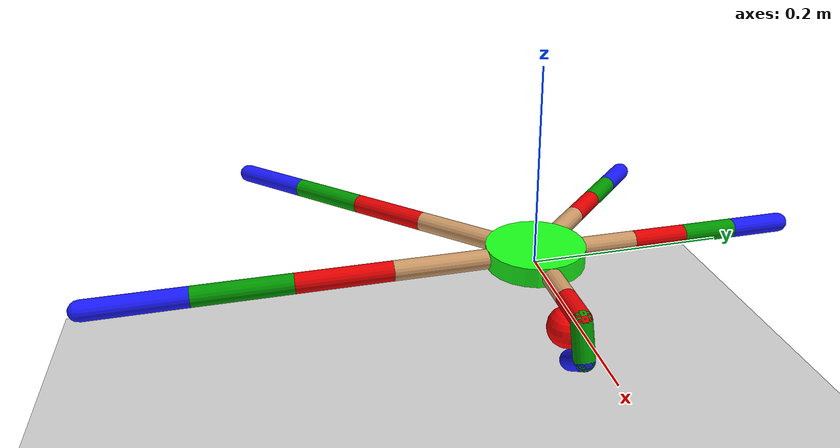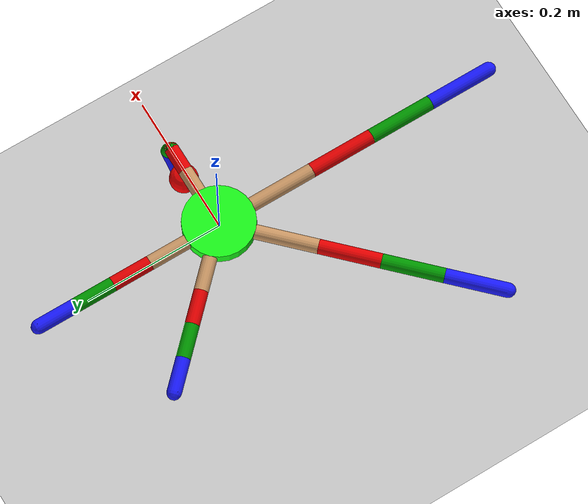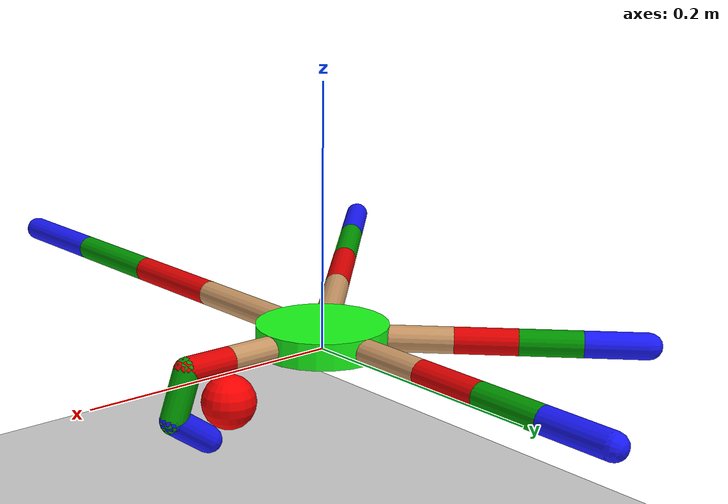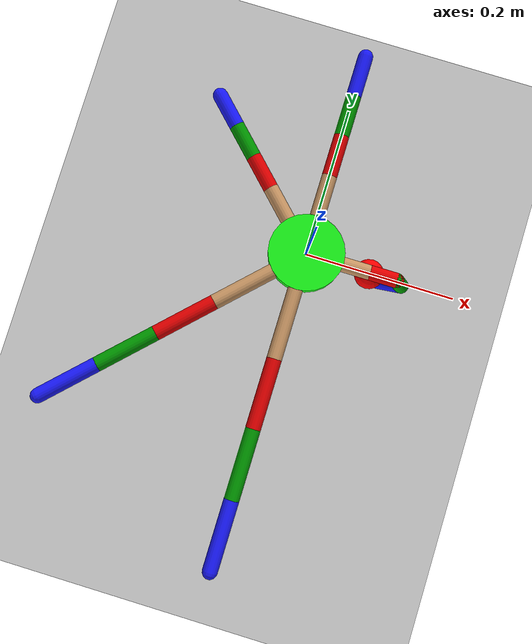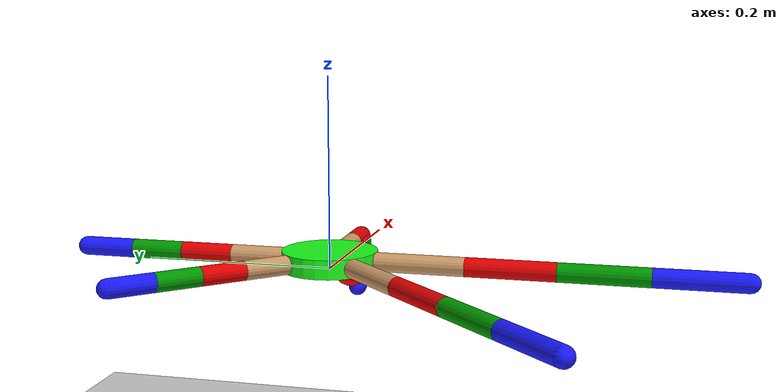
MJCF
<mujoco model="hand">
            <compiler angle="radian" assetdir="../descriptions/" inertiafromgeom="true" />
            <size njmax="500" nconmax="100" />

            <visual>
              <global offwidth="1920" offheight="1080" />
            </visual>

            <option>
                <flag gravity="enable" />
            </option>

            <default>
                <joint limited="true" damping="1" armature="0" />
                <geom contype="1" conaffinity="1" condim="3" rgba="0.8 0.6 .4 1" margin="0.001" solref=".02 1" solimp=".8 .8 .01" material="geom" />
            </default>

         <default>
            <joint damping="0.01" frictionloss="0" />
            <default class="visual">
              <geom contype="0" conaffinity="0" />
            </default>
            <default class="collision">
              <geom contype="1" conaffinity="1" friction="1 0.5 0.1" />
            </default>
              <default class="obj">
              <geom condim="3" priority="1" friction="1 1 1" solref=".02 0.8" solimp=".8 .8 .01" />
            </default>

              <default class="fingers">
              <geom friction="1 0.5 0.2" />
            </default>
            <site rgba="1 0 0 0" size="0.005 0.005 0.005" />
          </default>

                <asset>
                    <texture name="texgeom" type="cube" builtin="flat" mark="cross" width="127" height="1278" rgb1="0.8 0.6 0.4" rgb2="0.8 0.6 0.4" markrgb="1 1 1" random="0.01" />
                    <texture name="texplane" type="2d" builtin="checker" rgb1=".2 .3 .4" rgb2=".1 0.15 0.2" width="512" height="512" />

                    <material name="MatPlane" reflectance="0.5" texture="texplane" texrepeat="1 1" texuniform="true" />
                    <material name="geom" texture="texgeom" texuniform="true" />
                     <texture builtin="flat" name="allegro_mount_tex" height="32" width="32" rgb1="0.2 0.2 0.2" type="cube" />
                     <texture builtin="flat" name="hand_tex" height="32" width="32" rgb1="0.2 0.2 0.2 " type="cube" />
                     <texture builtin="flat" name="tip_tex" height="32" width="32" rgb1="0.9 0.9 0.9" type="cube" />

                    <material name="allegro_mount_mat" shininess="0.03" specular="0.25" />
                    <material name="hand_mat" shininess="0.03" specular="0.25" />
                    <material name="tip_mat" shininess="0.03" specular="0.25" />
                </asset>

            <worldbody>
                <light pos="0 0 1000" castshadow="false" />
                 <light directional="false" diffuse=".8 .8 .8" specular="0.3 0.3 0.3" pos="0 0 4.0" dir="0 -.15 -1" />
                 <camera name="closeup" pos="0 -.1 .07" xyaxes="1 0 0 0 1 2" />
                <geom name="floor" class="collision" type="plane" size="10 10 1" rgba=".8 .8 .8 1" pos="0 0 -0.25" material="MatPlane" />
                    <body name="hand" euler="0 0 0" pos="0 0 0.01">
            <freejoint />
            <geom class="fingers" name="hand_base" pos="0 0 0" quat="1 0 0 0" type="cylinder" size="0.05 0.01" rgba="0.1 1 .1 1" />

                        <body name="finger_0" pos="0 0 0">
                          <body name="aux_00" pos="0.05 0.0 0" quat="0.9999996008191248 0.0 0.0 0.0008935108231599496">
                            <geom class="fingers" fromto="0 0 0 0.036 0 0" name="g_00" size="0.01" type="capsule" />
                        <body name="aux_01" pos="0.036 0 0" quat="0.9999993027170079 -0.0 -0.0011809172274269333 -0.0">
                                        <geom class="fingers" fromto="0 0 0 0.036 0 0" name="g_01" size="0.01" type="capsule" rgba="0.9 0 0 1" />
                                    <body name="aux_02" pos="0.036 0 0" quat="0.8185134691910833 0.0 0.5744873373302296 0.0">
                                        <geom class="fingers" fromto="0 0 0 0.036 0 0" name="g_02" size="0.01" type="capsule" rgba="0.0 0.6 0 1" />
                                    <body name="aux_03" pos="0.036 0 0" quat="0.7966085828492817 0.0 0.6044954637802159 0.0">
                                        <geom class="fingers" fromto="0 0 0 0.036 0 0" name="g_03" size="0.01" type="capsule" rgba="0.1 0.1 1 1" />
                                            <site name="finger_site_0" pos="0.036 0 0" />
                    </body>
                    </body>
                    </body>
                    </body>
                    </body>

                        <body name="finger_2" pos="0 0 0">
                          <body name="aux_20" pos="3.061616997868383e-18 0.05 0" quat="0.7071067811865476 0.0 -0.0 0.7071067811865475">
                            <joint axis="0 0 1" name="joint_20" pos="0 0 0" range="-1 1" type="hinge" />
                            <geom class="fingers" fromto="0 0 0 0.056 0 0" name="g_20" size="0.01" type="capsule" />
                        <body name="aux_21" pos="0.056 0 0">
                              <joint axis="0 1 0" name="joint_21" pos="0 0 0" range="-2 2" type="hinge" />
                              <geom class="fingers" fromto="0 0 0 0.056 0 0" name="g_21" size="0.01" type="capsule" rgba="0.9 0 0 1" />
                        <body name="aux_22" pos="0.056 0 0">
                              <joint axis="0 1 0" name="joint_22" pos="0 0 0" range="-2 2" type="hinge" />
                              <geom class="fingers" fromto="0 0 0 0.056 0 0" name="g_22" size="0.01" type="capsule" rgba="0.0 0.6 0 1" />
                        <body name="aux_23" pos="0.056 0 0">
                              <joint axis="0 1 0" name="joint_23" pos="0 0 0" range="-2 2" type="hinge" />
                              <geom class="fingers" fromto="0 0 0 0.056 0 0" name="g_23" size="0.01" type="capsule" rgba="0.1 0.1 1 1" />
                                <site name="finger_site_2" pos="0.056 0 0" />
                    </body>
                    </body>
                    </body>
                    </body>
                    </body>

                        <body name="finger_3" pos="0 0 0">
                          <body name="aux_30" pos="-0.035355339059327376 0.03535533905932738 0" quat="0.38268343236508984 0.0 -0.0 0.9238795325112867">
                            <joint axis="0 0 1" name="joint_30" pos="0 0 0" range="-1 1" type="hinge" />
                            <geom class="fingers" fromto="0 0 0 0.047 0 0" name="g_30" size="0.01" type="capsule" />
                        <body name="aux_31" pos="0.047 0 0">
                              <joint axis="0 1 0" name="joint_31" pos="0 0 0" range="-2 2" type="hinge" />
                              <geom class="fingers" fromto="0 0 0 0.047 0 0" name="g_31" size="0.01" type="capsule" rgba="0.9 0 0 1" />
                        <body name="aux_32" pos="0.047 0 0">
                              <joint axis="0 1 0" name="joint_32" pos="0 0 0" range="-2 2" type="hinge" />
                              <geom class="fingers" fromto="0 0 0 0.047 0 0" name="g_32" size="0.01" type="capsule" rgba="0.0 0.6 0 1" />
                        <body name="aux_33" pos="0.047 0 0">
                              <joint axis="0 1 0" name="joint_33" pos="0 0 0" range="-2 2" type="hinge" />
                              <geom class="fingers" fromto="0 0 0 0.047 0 0" name="g_33" size="0.01" type="capsule" rgba="0.1 0.1 1 1" />
                                <site name="finger_site_3" pos="0.047 0 0" />
                    </body>
                    </body>
                    </body>
                    </body>
                    </body>

                        <body name="finger_5" pos="0 0 0">
                          <body name="aux_50" pos="-0.03535533905932738 -0.035355339059327376 0" quat="-0.3826834323650897 0.0 -0.0 0.9238795325112867">
                            <joint axis="0 0 1" name="joint_50" pos="0 0 0" range="-1 1" type="hinge" />
                            <geom class="fingers" fromto="0 0 0 0.085 0 0" name="g_50" size="0.01" type="capsule" />
                        <body name="aux_51" pos="0.085 0 0">
                              <joint axis="0 1 0" name="joint_51" pos="0 0 0" range="-2 2" type="hinge" />
                              <geom class="fingers" fromto="0 0 0 0.085 0 0" name="g_51" size="0.01" type="capsule" rgba="0.9 0 0 1" />
                        <body name="aux_52" pos="0.085 0 0">
                              <joint axis="0 1 0" name="joint_52" pos="0 0 0" range="-2 2" type="hinge" />
                              <geom class="fingers" fromto="0 0 0 0.085 0 0" name="g_52" size="0.01" type="capsule" rgba="0.0 0.6 0 1" />
                        <body name="aux_53" pos="0.085 0 0">
                              <joint axis="0 1 0" name="joint_53" pos="0 0 0" range="-2 2" type="hinge" />
                              <geom class="fingers" fromto="0 0 0 0.085 0 0" name="g_53" size="0.01" type="capsule" rgba="0.1 0.1 1 1" />
                                <site name="finger_site_5" pos="0.085 0 0" />
                    </body>
                    </body>
                    </body>
                    </body>
                    </body>

                        <body name="finger_6" pos="0 0 0">
                          <body name="aux_60" pos="-9.184850993605149e-18 -0.05 0" quat="-0.7071067811865475 0.0 -0.0 0.7071067811865476">
                            <joint axis="0 0 1" name="joint_60" pos="0 0 0" range="-1 1" type="hinge" />
                            <geom class="fingers" fromto="0 0 0 0.093 0 0" name="g_60" size="0.01" type="capsule" />
                        <body name="aux_61" pos="0.093 0 0">
                              <joint axis="0 1 0" name="joint_61" pos="0 0 0" range="-2 2" type="hinge" />
                              <geom class="fingers" fromto="0 0 0 0.093 0 0" name="g_61" size="0.01" type="capsule" rgba="0.9 0 0 1" />
                        <body name="aux_62" pos="0.093 0 0">
                              <joint axis="0 1 0" name="joint_62" pos="0 0 0" range="-2 2" type="hinge" />
                              <geom class="fingers" fromto="0 0 0 0.093 0 0" name="g_62" size="0.01" type="capsule" rgba="0.0 0.6 0 1" />
                        <body name="aux_63" pos="0.093 0 0">
                              <joint axis="0 1 0" name="joint_63" pos="0 0 0" range="-2 2" type="hinge" />
                              <geom class="fingers" fromto="0 0 0 0.093 0 0" name="g_63" size="0.01" type="capsule" rgba="0.1 0.1 1 1" />
                                <site name="finger_site_6" pos="0.093 0 0" />
                    </body>
                    </body>
                    </body>
                    </body>
                    </body>
                    <body name="sphere_1" pos="0.08835418615614497 0.002575148515077186 -0.029887265850693435 ">
                                   <geom name="sphere_1" class="obj" mass="0.005" rgba="1 0 0 1" size="0.02" type="sphere" />
                                   </body>

                            </body>
                        </worldbody>

                            <actuator>
                <motor name="joint_20" ctrllimited="true" ctrlrange="-2 2" joint="joint_20" />
                    <motor name="joint_21" ctrllimited="true" ctrlrange="-2 2" joint="joint_21" />
                    <motor name="joint_22" ctrllimited="true" ctrlrange="-2 2" joint="joint_22" />
                    <motor name="joint_23" ctrllimited="true" ctrlrange="-2 2" joint="joint_23" />
                    <motor name="joint_30" ctrllimited="true" ctrlrange="-2 2" joint="joint_30" />
                    <motor name="joint_31" ctrllimited="true" ctrlrange="-2 2" joint="joint_31" />
                    <motor name="joint_32" ctrllimited="true" ctrlrange="-2 2" joint="joint_32" />
                    <motor name="joint_33" ctrllimited="true" ctrlrange="-2 2" joint="joint_33" />
                    <motor name="joint_50" ctrllimited="true" ctrlrange="-2 2" joint="joint_50" />
                    <motor name="joint_51" ctrllimited="true" ctrlrange="-2 2" joint="joint_51" />
                    <motor name="joint_52" ctrllimited="true" ctrlrange="-2 2" joint="joint_52" />
                    <motor name="joint_53" ctrllimited="true" ctrlrange="-2 2" joint="joint_53" />
                    <motor name="joint_60" ctrllimited="true" ctrlrange="-2 2" joint="joint_60" />
                    <motor name="joint_61" ctrllimited="true" ctrlrange="-2 2" joint="joint_61" />
                    <motor name="joint_62" ctrllimited="true" ctrlrange="-2 2" joint="joint_62" />
                    <motor name="joint_63" ctrllimited="true" ctrlrange="-2 2" joint="joint_63" />
                    </actuator>

        </mujoco>
